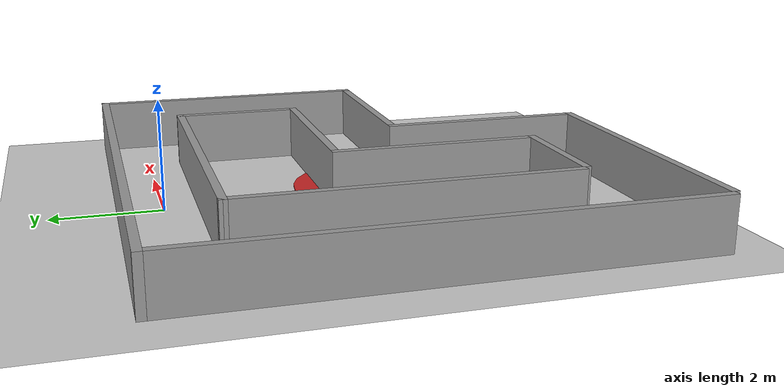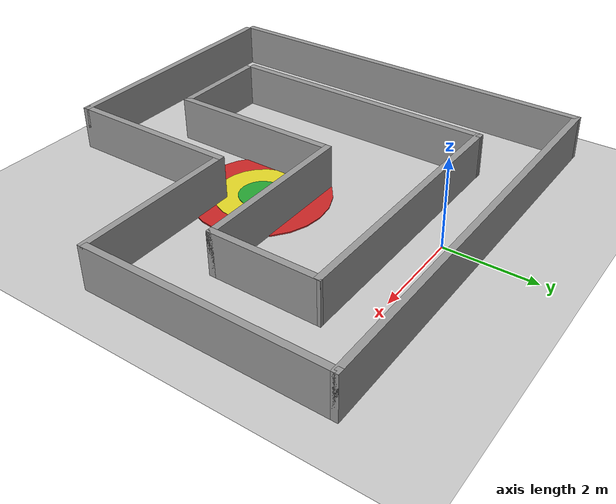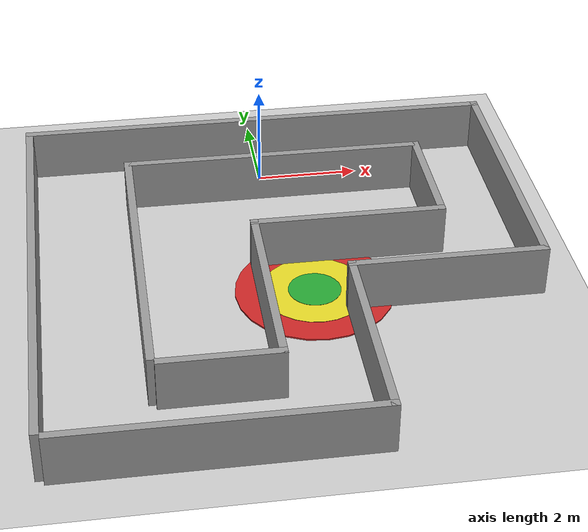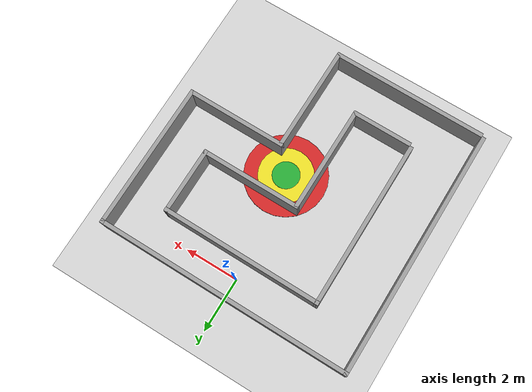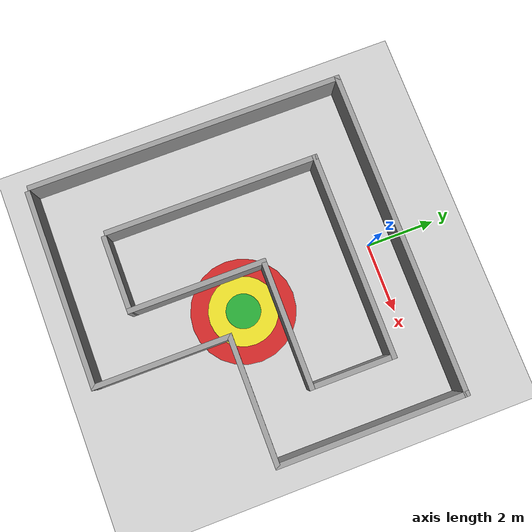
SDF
<sdf version="1.4">
 <world name="default">
  <light name="sun" type="directional">
   <pose>0 0 10 0 -0 0</pose>
   <diffuse>0.8 0.8 0.8 1</diffuse>
   <specular>0.2 0.2 0.2 1</specular>
   <attenuation>
    <range>1000</range>
    <constant>0.9</constant>
    <linear>0.01</linear>
    <quadratic>0.001</quadratic>
   </attenuation>
   <direction>0.5 0.1 -0.9</direction>
  </light>
  <model name="ground_plane">
   <static>1</static>
   <link name="link">
    <collision name="collision">
     <geometry><plane><normal>0 0 1</normal><size>100 100</size></plane></geometry>
     <surface><friction><ode><mu>100</mu><mu2>50</mu2></ode></friction></surface>
    </collision>
    <visual name="visual">
     <cast_shadows>0</cast_shadows>
     <geometry><plane><normal>0 0 1</normal><size>100 100</size></plane></geometry>
     <material>
      <script><uri>file://media/materials/scripts/gazebo.material</uri><name>Gazebo/Grey</name></script>
     </material>
    </visual>
    <velocity_decay><linear>0</linear><angular>0</angular></velocity_decay>
   </link>
  </model>
  <scene><ambient>0.4 0.4 0.4 1</ambient><background>0.7 0.7 0.7 1</background><shadows>0</shadows></scene>
  <physics type="ode">
   <max_step_size>0.01</max_step_size>
   <real_time_factor>1</real_time_factor>
   <real_time_update_rate>0</real_time_update_rate>
   <gravity>0 0 -9.8</gravity>
  </physics>
  <include><uri>model://Circuit_ql_2</uri><pose>0 -3.85 0 0 0 1.567</pose></include>
  <include><uri>model://Target</uri><pose>0.5 -4.0 0 0 0 0</pose></include>
 </world>
</sdf>

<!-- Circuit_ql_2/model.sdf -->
<sdf version='1.5'>
  <model name='Circuit_ql_2'>
    <pose frame=''>-0.076 0.178 0 0 -0 0</pose>
    <link name='Wall_0'>
      <collision name='Wall_0_Collision'>
        <geometry>
          <box>
            <size>5.75 0.15 1</size>
          </box>
        </geometry>
        <pose frame=''>0 0 0.5 0 -0 0</pose>
      </collision>
      <visual name='Wall_0_Visual'>
        <pose frame=''>0 0 0.5 0 -0 0</pose>
        <geometry>
          <box>
            <size>5.75 0.15 1</size>
          </box>
        </geometry>
        <material>
          <script>
            <uri>file://media/materials/scripts/gazebo.material</uri>
            <name>Gazebo/Grey</name>
          </script>
          <ambient>1 1 1 1</ambient>
        </material>
      </visual>
      <pose frame=''>-4.6 1.725 0 0 0 -1.5708</pose>
    </link>
    <link name='Wall_1'>
      <collision name='Wall_1_Collision'>
        <geometry>
          <box>
            <size>4 0.15 1</size>
          </box>
        </geometry>
        <pose frame=''>0 0 0.5 0 -0 0</pose>
      </collision>
      <visual name='Wall_1_Visual'>
        <pose frame=''>0 0 0.5 0 -0 0</pose>
        <geometry>
          <box>
            <size>4 0.15 1</size>
          </box>
        </geometry>
        <material>
          <script>
            <uri>file://media/materials/scripts/gazebo.material</uri>
            <name>Gazebo/Grey</name>
          </script>
          <ambient>1 1 1 1</ambient>
        </material>
      </visual>
      <pose frame=''>-2.675 -1.075 0 0 -0 0</pose>
    </link>
    <link name='Wall_11'>
      <collision name='Wall_11_Collision'>
        <geometry>
          <box>
            <size>2.25 0.15 1</size>
          </box>
        </geometry>
        <pose frame=''>0 0 0.5 0 -0 0</pose>
      </collision>
      <visual name='Wall_11_Visual'>
        <pose frame=''>0 0 0.5 0 -0 0</pose>
        <geometry>
          <box>
            <size>2.25 0.15 1</size>
          </box>
        </geometry>
        <material>
          <script>
            <uri>file://media/materials/scripts/gazebo.material</uri>
            <name>Gazebo/Grey</name>
          </script>
          <ambient>1 1 1 1</ambient>
        </material>
      </visual>
      <pose frame=''>-3.036 1.559 0 0 0 -1.5708</pose>
    </link>
    <link name='Wall_12'>
      <collision name='Wall_12_Collision'>
        <geometry>
          <box>
            <size>4 0.15 1</size>
          </box>
        </geometry>
        <pose frame=''>0 0 0.5 0 -0 0</pose>
      </collision>
      <visual name='Wall_12_Visual'>
        <pose frame=''>0 0 0.5 0 -0 0</pose>
        <geometry>
          <box>
            <size>4 0.15 1</size>
          </box>
        </geometry>
        <material>
          <script>
            <uri>file://media/materials/scripts/gazebo.material</uri>
            <name>Gazebo/Grey</name>
          </script>
          <ambient>1 1 1 1</ambient>
        </material>
      </visual>
      <pose frame=''>-1.111 0.509 0 0 -0 0</pose>
    </link>
    <link name='Wall_13'>
      <collision name='Wall_13_Collision'>
        <geometry>
          <box>
            <size>3.75 0.15 1</size>
          </box>
        </geometry>
        <pose frame=''>0 0 0.5 0 -0 0</pose>
      </collision>
      <visual name='Wall_13_Visual'>
        <pose frame=''>0 0 0.5 0 -0 0</pose>
        <geometry>
          <box>
            <size>3.75 0.15 1</size>
          </box>
        </geometry>
        <material>
          <script>
            <uri>file://media/materials/scripts/gazebo.material</uri>
            <name>Gazebo/Grey</name>
          </script>
          <ambient>1 1 1 1</ambient>
        </material>
      </visual>
      <pose frame=''>0.814 -1.291 0 0 0 -1.5708</pose>
    </link>
    <link name='Wall_14'>
      <collision name='Wall_14_Collision'>
        <geometry>
          <box>
            <size>2.5 0.15 1</size>
          </box>
        </geometry>
        <pose frame=''>0 0 0.5 0 -0 0</pose>
      </collision>
      <visual name='Wall_14_Visual'>
        <pose frame=''>0 0 0.5 0 -0 0</pose>
        <geometry>
          <box>
            <size>2.5 0.15 1</size>
          </box>
        </geometry>
        <material>
          <script>
            <uri>file://media/materials/scripts/gazebo.material</uri>
            <name>Gazebo/Grey</name>
          </script>
          <ambient>1 1 1 1</ambient>
        </material>
      </visual>
      <pose frame=''>1.989 -3.091 0 0 -0 0</pose>
    </link>
    <link name='Wall_15'>
      <collision name='Wall_15_Collision'>
        <geometry>
          <box>
            <size>5.98502 0.15 1</size>
          </box>
        </geometry>
        <pose frame=''>0 0 0.5 0 -0 0</pose>
      </collision>
      <visual name='Wall_15_Visual'>
        <pose frame=''>0 0 0.5 0 -0 0</pose>
        <geometry>
          <box>
            <size>5.98502 0.15 1</size>
          </box>
        </geometry>
        <material>
          <script>
            <uri>file://media/materials/scripts/gazebo.material</uri>
            <name>Gazebo/Grey</name>
          </script>
          <ambient>1 1 1 1</ambient>
        </material>
      </visual>
      <pose frame=''>3.1715 -0.1735 0 0 -0 1.56823</pose>
    </link>
    <link name='Wall_16'>
      <collision name='Wall_16_Collision'>
        <geometry>
          <box>
            <size>6.25 0.15 1</size>
          </box>
        </geometry>
        <pose frame=''>0 0 0.5 0 -0 0</pose>
      </collision>
      <visual name='Wall_16_Visual'>
        <pose frame=''>0 0 0.5 0 -0 0</pose>
        <geometry>
          <box>
            <size>6.25 0.15 1</size>
          </box>
        </geometry>
        <material>
          <script>
            <uri>file://media/materials/scripts/gazebo.material</uri>
            <name>Gazebo/Grey</name>
          </script>
          <ambient>1 1 1 1</ambient>
        </material>
      </visual>
      <pose frame=''>0.129 2.744 0 0 -0 3.14159</pose>
    </link>
    <link name='Wall_2'>
      <collision name='Wall_2_Collision'>
        <geometry>
          <box>
            <size>3.75 0.15 1</size>
          </box>
        </geometry>
        <pose frame=''>0 0 0.5 0 -0 0</pose>
      </collision>
      <visual name='Wall_2_Visual'>
        <pose frame=''>0 0 0.5 0 -0 0</pose>
        <geometry>
          <box>
            <size>3.75 0.15 1</size>
          </box>
        </geometry>
        <material>
          <script>
            <uri>file://media/materials/scripts/gazebo.material</uri>
            <name>Gazebo/Grey</name>
          </script>
          <ambient>1 1 1 1</ambient>
        </material>
      </visual>
      <pose frame=''>-0.75 -2.875 0 0 0 -1.5708</pose>
    </link>
    <link name='Wall_3'>
      <collision name='Wall_3_Collision'>
        <geometry>
          <box>
            <size>5.5 0.15 1</size>
          </box>
        </geometry>
        <pose frame=''>0 0 0.5 0 -0 0</pose>
      </collision>
      <visual name='Wall_3_Visual'>
        <pose frame=''>0 0 0.5 0 -0 0</pose>
        <geometry>
          <box>
            <size>5.5 0.15 1</size>
          </box>
        </geometry>
        <material>
          <script>
            <uri>file://media/materials/scripts/gazebo.material</uri>
            <name>Gazebo/Grey</name>
          </script>
          <ambient>1 1 1 1</ambient>
        </material>
      </visual>
      <pose frame=''>1.925 -4.675 0 0 -0 0</pose>
    </link>
    <link name='Wall_7'>
      <collision name='Wall_7_Collision'>
        <geometry>
          <box>
            <size>9.5 0.15 1</size>
          </box>
        </geometry>
        <pose frame=''>0 0 0.5 0 -0 0</pose>
      </collision>
      <visual name='Wall_7_Visual'>
        <pose frame=''>0 0 0.5 0 -0 0</pose>
        <geometry>
          <box>
            <size>9.5 0.15 1</size>
          </box>
        </geometry>
        <material>
          <script>
            <uri>file://media/materials/scripts/gazebo.material</uri>
            <name>Gazebo/Grey</name>
          </script>
          <ambient>1 1 1 1</ambient>
        </material>
      </visual>
      <pose frame=''>4.6 0 0 0 -0 1.5708</pose>
    </link>
    <link name='Wall_9'>
      <collision name='Wall_9_Collision'>
        <geometry>
          <box>
            <size>9.25 0.15 1</size>
          </box>
        </geometry>
        <pose frame=''>0 0 0.5 0 -0 0</pose>
      </collision>
      <visual name='Wall_9_Visual'>
        <pose frame=''>0 0 0.5 0 -0 0</pose>
        <geometry>
          <box>
            <size>9.25 0.15 1</size>
          </box>
        </geometry>
        <material>
          <script>
            <uri>file://media/materials/scripts/gazebo.material</uri>
            <name>Gazebo/Grey</name>
          </script>
          <ambient>1 1 1 1</ambient>
        </material>
      </visual>
      <pose frame=''>0.05 4.675 0 0 -0 3.14159</pose>
    </link>
    <static>1</static>
  </model>
</sdf>

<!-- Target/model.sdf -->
<sdf version="1.5">
  <model name="Target">
    <static>true</static>
    <link name="green">
      <pose>0 0 0 0 0 0</pose>
      <visual name="visual">
        <geometry>
          <cylinder>
              <radius>0.5</radius>
              <length>.05</length>
          </cylinder>
        </geometry>
        <material>
          <script>
            <uri>file://media/materials/scripts/gazebo.material</uri>
            <name>Gazebo/Green</name>
          </script>
          <ambient>1 1 1 1</ambient>
        </material>
        <cast_shadows>0</cast_shadows>
        <transparency>0</transparency>
      </visual>
    </link>
    <link name="yellow">
      <pose>0 0 0 0 0 0</pose>
      <visual name="visual">
        <geometry>
          <cylinder>
              <radius>1</radius>
              <length>.04</length>
          </cylinder>
        </geometry>
        <material>
          <script>
            <uri>file://media/materials/scripts/gazebo.material</uri>
            <name>Gazebo/Yellow</name>
          </script>
          <ambient>1 1 1 1</ambient>
        </material>
        <cast_shadows>0</cast_shadows>
        <transparency>0</transparency>
      </visual>
    </link>
    <link name="red">
      <pose>0 0 0 0 0 0</pose>
      <visual name="visual">
        <geometry>
          <cylinder>
              <radius>1.5</radius>
              <length>.03</length>
          </cylinder>
        </geometry>
        <material>
          <script>
            <uri>file://media/materials/scripts/gazebo.material</uri>
            <name>Gazebo/Red</name>
          </script>
          <ambient>1 1 1 1</ambient>
        </material>
        <cast_shadows>0</cast_shadows>
        <transparency>0</transparency>
      </visual>
    </link>
  </model>
</sdf>
